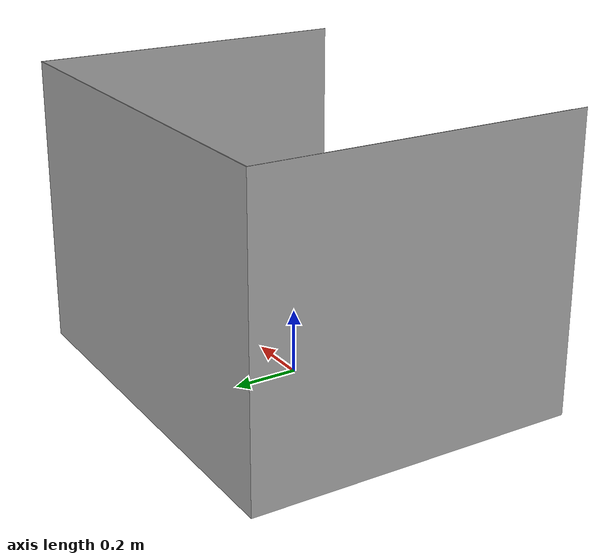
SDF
<?xml version='1.0'?>
<sdf version="1.4">
    <model name="big_container_open">
        <static>1</static>
        <link name="link">
            <inertial>
                <mass>1</mass>
                <inertia>
                    <ixx>1.0</ixx>
                    <ixy>0.0</ixy>
                    <ixz>0.0</ixz>
                    <iyy>1.0</iyy>
                    <iyz>0.0</iyz>
                    <izz>1.0</izz>
                </inertia>
            </inertial>
            <collision name="collision">
                <geometry>
                    <mesh>
                        <scale>0.001 0.001 0.001</scale>
                        <uri>model://big_container_open/big_container_open_meshlab.dae</uri>
                    </mesh>
                </geometry>
                <surface>
                    <friction>
                        <ode>
                            <mu>0.6</mu>
                            <mu2>0.6</mu2>
                        </ode>
                    </friction>
                    <contact>
                        <ode>
                            <max_vel>0.1</max_vel>
                            <min_depth>0.0001</min_depth>
                        </ode>
                    </contact>
                </surface>
            </collision>
            <visual name="visual">
                <geometry>
                    <mesh>
                        <scale>0.001 0.001 0.001</scale>
                        <uri>model://big_container_open/big_container_open_meshlab.dae</uri>
                    </mesh>
                </geometry>
            </visual>
        </link>
    </model>
</sdf>
